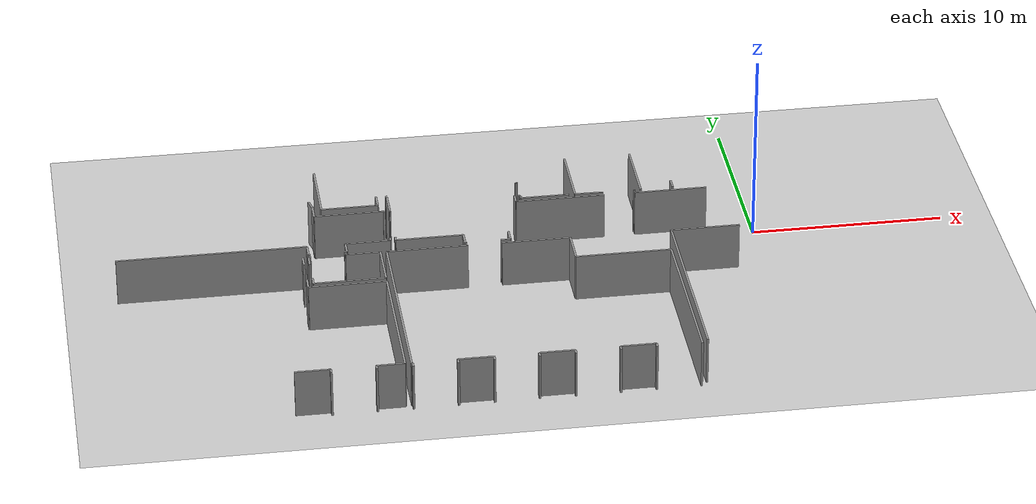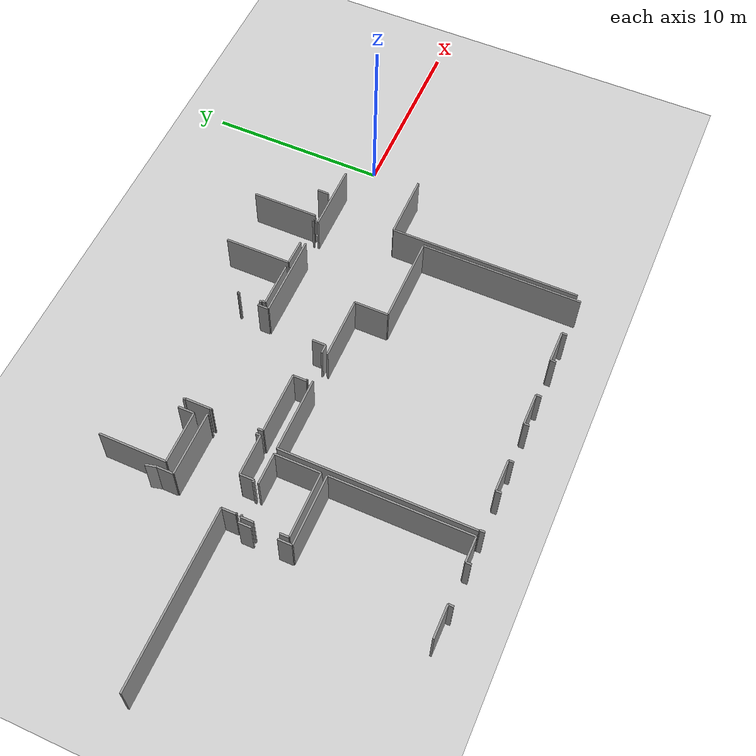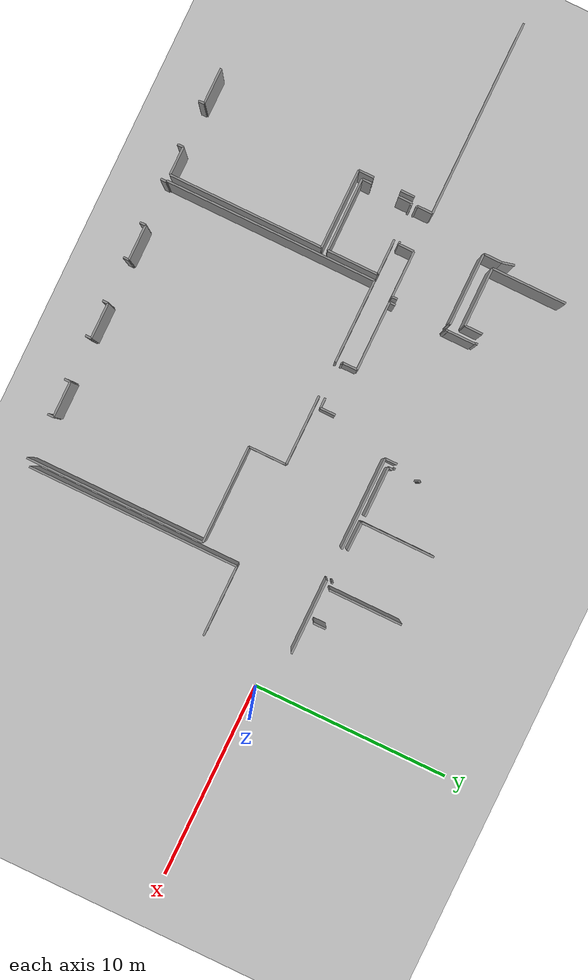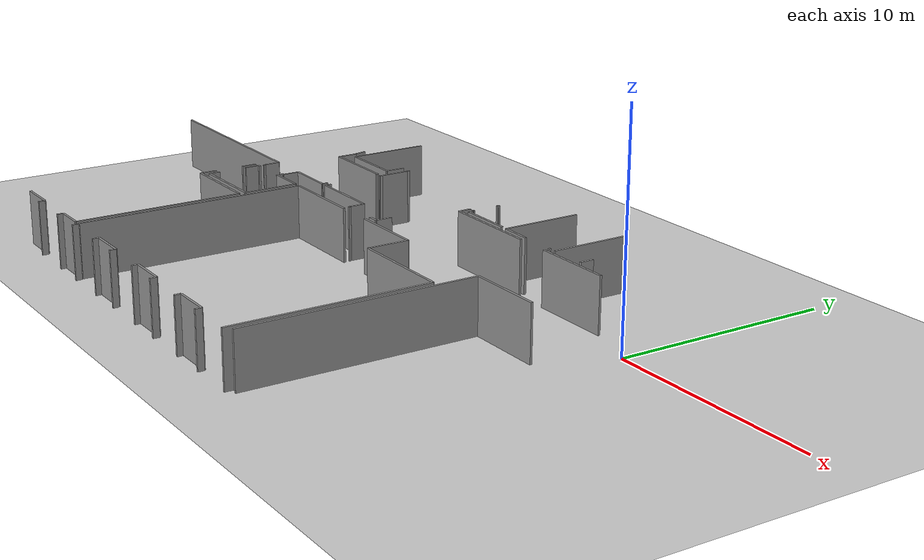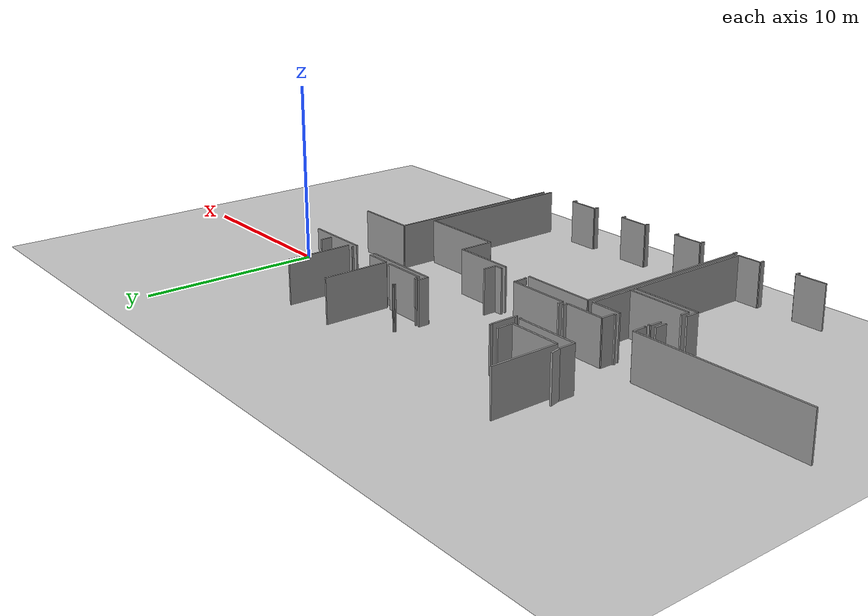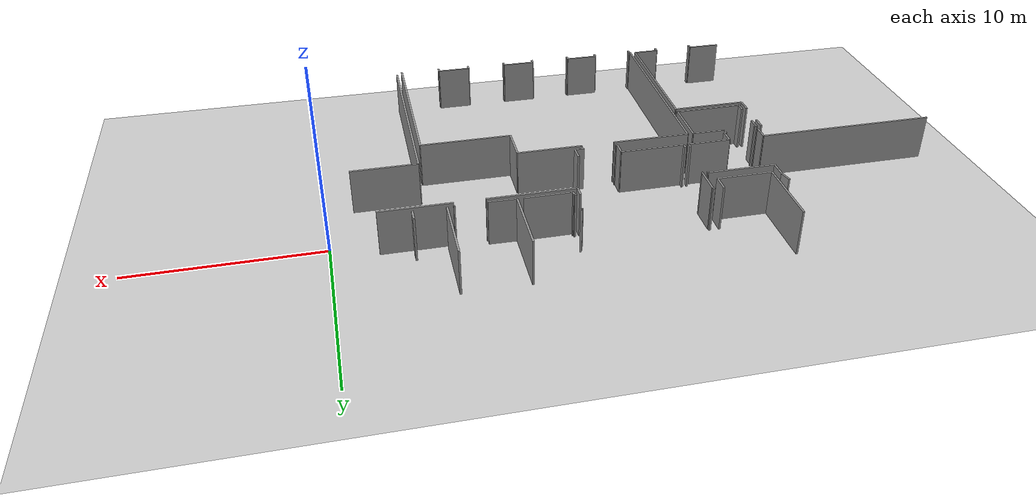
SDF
<sdf version="1.6">
 <world name="default">
  <model name="ground_plane">
   <static>1</static>
   <link name="link">
    <collision name="collision">
     <geometry><plane><normal>0 0 1</normal><size>100 100</size></plane></geometry>
     <surface><friction><ode><mu>100</mu><mu2>50</mu2></ode></friction></surface>
    </collision>
    <visual name="visual">
     <cast_shadows>0</cast_shadows>
     <geometry><plane><normal>0 0 1</normal><size>100 100</size></plane></geometry>
     <material>
      <script><uri>file://media/materials/scripts/gazebo.material</uri><name>Gazebo/Grey</name></script>
     </material>
    </visual>
   </link>
  </model>
  <model name="0510032270_A_40_1_104">
   <static>1</static>
   <link name="Wall_114">
    <collision name="Wall_114_Collision">
     <geometry><box><size>0.701805659682 0.1 2.5</size></box></geometry>
     <pose>0.350902829841 0 1.25 0 0 0</pose>
    </collision>
    <visual name="Wall_114_Visual">
     <pose>0.350902829841 0 1.25 0 0 0</pose>
     <geometry><box><size>0.701805659682 0.1 2.5</size></box></geometry>
     <material>
      <script><uri>file://media/materials/scripts/gazebo.material</uri><name>Gazebo/Grey</name></script>
      <ambient>1 1 1 1</ambient>
     </material>
    </visual>
    <pose>24.0090473589 -18.4666505712 0 0 0 -1.57079632679</pose>
   </link>
   <link name="Wall_115">
    <collision name="Wall_115_Collision">
     <geometry><box><size>0.774616567341 0.1 2.5</size></box></geometry>
     <pose>0.38730828367 0 1.25 0 0 0</pose>
    </collision>
    <visual name="Wall_115_Visual">
     <pose>0.38730828367 0 1.25 0 0 0</pose>
     <geometry><box><size>0.774616567341 0.1 2.5</size></box></geometry>
     <material>
      <script><uri>file://media/materials/scripts/gazebo.material</uri><name>Gazebo/Grey</name></script>
      <ambient>1 1 1 1</ambient>
     </material>
    </visual>
    <pose>24.0090473589 -20.545891203 0 0 0 -1.57079632679</pose>
   </link>
   <link name="Wall_116">
    <collision name="Wall_116_Collision">
     <geometry><box><size>3.94856220695 0.1 2.5</size></box></geometry>
     <pose>1.97428110347 0 1.25 0 0 0</pose>
    </collision>
    <visual name="Wall_116_Visual">
     <pose>1.97428110347 0 1.25 0 0 0</pose>
     <geometry><box><size>3.94856220695 0.1 2.5</size></box></geometry>
     <material>
      <script><uri>file://media/materials/scripts/gazebo.material</uri><name>Gazebo/Grey</name></script>
      <ambient>1 1 1 1</ambient>
     </material>
    </visual>
    <pose>24.0090473589 -21.3205077703 0 0 0 0.0</pose>
   </link>
   <link name="Wall_117">
    <collision name="Wall_117_Collision">
     <geometry><box><size>7.73676251954 0.1 2.5</size></box></geometry>
     <pose>3.86838125977 0 1.25 0 0 0</pose>
    </collision>
    <visual name="Wall_117_Visual">
     <pose>3.86838125977 0 1.25 0 0 0</pose>
     <geometry><box><size>7.73676251954 0.1 2.5</size></box></geometry>
     <material>
      <script><uri>file://media/materials/scripts/gazebo.material</uri><name>Gazebo/Grey</name></script>
      <ambient>1 1 1 1</ambient>
     </material>
    </visual>
    <pose>27.9576095658 -21.3205077703 0 0 0 -1.57079632679</pose>
   </link>
   <link name="Wall_118">
    <collision name="Wall_118_Collision">
     <geometry><box><size>1.40450080689 0.1 2.5</size></box></geometry>
     <pose>0.702250403446 0 1.25 0 0 0</pose>
    </collision>
    <visual name="Wall_118_Visual">
     <pose>0.702250403446 0 1.25 0 0 0</pose>
     <geometry><box><size>1.40450080689 0.1 2.5</size></box></geometry>
     <material>
      <script><uri>file://media/materials/scripts/gazebo.material</uri><name>Gazebo/Grey</name></script>
      <ambient>1 1 1 1</ambient>
     </material>
    </visual>
    <pose>27.9576095658 -29.0572702898 0 0 0 3.14159265359</pose>
   </link>
   <link name="Wall_119">
    <collision name="Wall_119_Collision">
     <geometry><box><size>0.296199346862 0.1 2.5</size></box></geometry>
     <pose>0.148099673431 0 1.25 0 0 0</pose>
    </collision>
    <visual name="Wall_119_Visual">
     <pose>0.148099673431 0 1.25 0 0 0</pose>
     <geometry><box><size>0.296199346862 0.1 2.5</size></box></geometry>
     <material>
      <script><uri>file://media/materials/scripts/gazebo.material</uri><name>Gazebo/Grey</name></script>
      <ambient>1 1 1 1</ambient>
     </material>
    </visual>
    <pose>26.5531087589 -29.0572702898 0 0 0 -1.57079632679</pose>
   </link>
   <link name="Wall_120">
    <collision name="Wall_120_Collision">
     <geometry><box><size>0.292133118162 0.1 2.5</size></box></geometry>
     <pose>0.146066559081 0 1.25 0 0 0</pose>
    </collision>
    <visual name="Wall_120_Visual">
     <pose>0.146066559081 0 1.25 0 0 0</pose>
     <geometry><box><size>0.292133118162 0.1 2.5</size></box></geometry>
     <material>
      <script><uri>file://media/materials/scripts/gazebo.material</uri><name>Gazebo/Grey</name></script>
      <ambient>1 1 1 1</ambient>
     </material>
    </visual>
    <pose>24.3259590582 -29.3534696367 0 0 0 1.57079632679</pose>
   </link>
   <link name="Wall_121">
    <collision name="Wall_121_Collision">
     <geometry><box><size>1.78227886705 0.1 2.5</size></box></geometry>
     <pose>0.891139433524 0 1.25 0 0 0</pose>
    </collision>
    <visual name="Wall_121_Visual">
     <pose>0.891139433524 0 1.25 0 0 0</pose>
     <geometry><box><size>1.78227886705 0.1 2.5</size></box></geometry>
     <material>
      <script><uri>file://media/materials/scripts/gazebo.material</uri><name>Gazebo/Grey</name></script>
      <ambient>1 1 1 1</ambient>
     </material>
    </visual>
    <pose>24.3259590582 -29.0613365185 0 0 0 3.14159265359</pose>
   </link>
   <link name="Wall_125">
    <collision name="Wall_125_Collision">
     <geometry><box><size>0.501289756916 0.1 2.5</size></box></geometry>
     <pose>0.250644878458 0 1.25 0 0 0</pose>
    </collision>
    <visual name="Wall_125_Visual">
     <pose>0.250644878458 0 1.25 0 0 0</pose>
     <geometry><box><size>0.501289756916 0.1 2.5</size></box></geometry>
     <material>
      <script><uri>file://media/materials/scripts/gazebo.material</uri><name>Gazebo/Grey</name></script>
      <ambient>1 1 1 1</ambient>
     </material>
    </visual>
    <pose>24.2996556413 -21.0066457425 0 0 0 1.57079632679</pose>
   </link>
   <link name="Wall_126">
    <collision name="Wall_126_Collision">
     <geometry><box><size>0.688717486054 0.1 2.5</size></box></geometry>
     <pose>0.344358743027 0 1.25 0 0 0</pose>
    </collision>
    <visual name="Wall_126_Visual">
     <pose>0.344358743027 0 1.25 0 0 0</pose>
     <geometry><box><size>0.688717486054 0.1 2.5</size></box></geometry>
     <material>
      <script><uri>file://media/materials/scripts/gazebo.material</uri><name>Gazebo/Grey</name></script>
      <ambient>1 1 1 1</ambient>
     </material>
    </visual>
    <pose>24.2996556413 -19.1426610925 0 0 0 1.57079632679</pose>
   </link>
   <link name="Wall_127">
    <collision name="Wall_127_Collision">
     <geometry><box><size>0.132025363102 0.1 2.5</size></box></geometry>
     <pose>0.0660126815508 0 1.25 0 0 0</pose>
    </collision>
    <visual name="Wall_127_Visual">
     <pose>0.0660126815508 0 1.25 0 0 0</pose>
     <geometry><box><size>0.132025363102 0.1 2.5</size></box></geometry>
     <material>
      <script><uri>file://media/materials/scripts/gazebo.material</uri><name>Gazebo/Grey</name></script>
      <ambient>1 1 1 1</ambient>
     </material>
    </visual>
    <pose>24.2996556413 -18.4539436065 0 0 0 0.0</pose>
   </link>
   <link name="Wall_128">
    <collision name="Wall_128_Collision">
     <geometry><box><size>1.76893655413 0.1 2.5</size></box></geometry>
     <pose>0.884468277063 0 1.25 0 0 0</pose>
    </collision>
    <visual name="Wall_128_Visual">
     <pose>0.884468277063 0 1.25 0 0 0</pose>
     <geometry><box><size>1.76893655413 0.1 2.5</size></box></geometry>
     <material>
      <script><uri>file://media/materials/scripts/gazebo.material</uri><name>Gazebo/Grey</name></script>
      <ambient>1 1 1 1</ambient>
     </material>
    </visual>
    <pose>26.1843526437 -18.4539436065 0 0 0 0.0</pose>
   </link>
   <link name="Wall_129">
    <collision name="Wall_129_Collision">
     <geometry><box><size>2.54482381793 0.1 2.5</size></box></geometry>
     <pose>1.27241190897 0 1.25 0 0 0</pose>
    </collision>
    <visual name="Wall_129_Visual">
     <pose>1.27241190897 0 1.25 0 0 0</pose>
     <geometry><box><size>2.54482381793 0.1 2.5</size></box></geometry>
     <material>
      <script><uri>file://media/materials/scripts/gazebo.material</uri><name>Gazebo/Grey</name></script>
      <ambient>1 1 1 1</ambient>
     </material>
    </visual>
    <pose>27.9532891978 -18.4539436065 0 0 0 -1.57079632679</pose>
   </link>
   <link name="Wall_130">
    <collision name="Wall_130_Collision">
     <geometry><box><size>3.65364205054 0.1 2.5</size></box></geometry>
     <pose>1.82682102527 0 1.25 0 0 0</pose>
    </collision>
    <visual name="Wall_130_Visual">
     <pose>1.82682102527 0 1.25 0 0 0</pose>
     <geometry><box><size>3.65364205054 0.1 2.5</size></box></geometry>
     <material>
      <script><uri>file://media/materials/scripts/gazebo.material</uri><name>Gazebo/Grey</name></script>
      <ambient>1 1 1 1</ambient>
     </material>
    </visual>
    <pose>27.9532891978 -20.9987674244 0 0 0 -3.1394363602</pose>
   </link>
   <link name="Wall_150">
    <collision name="Wall_150_Collision">
     <geometry><box><size>0.601906974055 0.1 2.5</size></box></geometry>
     <pose>0.300953487027 0 1.25 0 0 0</pose>
    </collision>
    <visual name="Wall_150_Visual">
     <pose>0.300953487027 0 1.25 0 0 0</pose>
     <geometry><box><size>0.601906974055 0.1 2.5</size></box></geometry>
     <material>
      <script><uri>file://media/materials/scripts/gazebo.material</uri><name>Gazebo/Grey</name></script>
      <ambient>1 1 1 1</ambient>
     </material>
    </visual>
    <pose>24.8433866602 -12.9530985933 0 0 0 -1.33252519236</pose>
   </link>
   <link name="Wall_151">
    <collision name="Wall_151_Collision">
     <geometry><box><size>0.910581089495 0.1 2.5</size></box></geometry>
     <pose>0.455290544748 0 1.25 0 0 0</pose>
    </collision>
    <visual name="Wall_151_Visual">
     <pose>0.455290544748 0 1.25 0 0 0</pose>
     <geometry><box><size>0.910581089495 0.1 2.5</size></box></geometry>
     <material>
      <script><uri>file://media/materials/scripts/gazebo.material</uri><name>Gazebo/Grey</name></script>
      <ambient>1 1 1 1</ambient>
     </material>
    </visual>
    <pose>24.9854505254 -13.5380001779 0 0 0 -1.57079632679</pose>
   </link>
   <link name="Wall_152">
    <collision name="Wall_152_Collision">
     <geometry><box><size>3.60509295145 0.1 2.5</size></box></geometry>
     <pose>1.80254647572 0 1.25 0 0 0</pose>
    </collision>
    <visual name="Wall_152_Visual">
     <pose>1.80254647572 0 1.25 0 0 0</pose>
     <geometry><box><size>3.60509295145 0.1 2.5</size></box></geometry>
     <material>
      <script><uri>file://media/materials/scripts/gazebo.material</uri><name>Gazebo/Grey</name></script>
      <ambient>1 1 1 1</ambient>
     </material>
    </visual>
    <pose>24.9854505254 -14.4485812674 0 0 0 0.0</pose>
   </link>
   <link name="Wall_153">
    <collision name="Wall_153_Collision">
     <geometry><box><size>0.0983519066801 0.1 2.5</size></box></geometry>
     <pose>0.04917595334 0 1.25 0 0 0</pose>
    </collision>
    <visual name="Wall_153_Visual">
     <pose>0.04917595334 0 1.25 0 0 0</pose>
     <geometry><box><size>0.0983519066801 0.1 2.5</size></box></geometry>
     <material>
      <script><uri>file://media/materials/scripts/gazebo.material</uri><name>Gazebo/Grey</name></script>
      <ambient>1 1 1 1</ambient>
     </material>
    </visual>
    <pose>28.5905434769 -14.4485812674 0 0 0 -1.57079632679</pose>
   </link>
   <link name="Wall_154">
    <collision name="Wall_154_Collision">
     <geometry><box><size>0.265321422672 0.1 2.5</size></box></geometry>
     <pose>0.132660711336 0 1.25 0 0 0</pose>
    </collision>
    <visual name="Wall_154_Visual">
     <pose>0.132660711336 0 1.25 0 0 0</pose>
     <geometry><box><size>0.265321422672 0.1 2.5</size></box></geometry>
     <material>
      <script><uri>file://media/materials/scripts/gazebo.material</uri><name>Gazebo/Grey</name></script>
      <ambient>1 1 1 1</ambient>
     </material>
    </visual>
    <pose>28.5905434769 -17.1335629058 0 0 0 -1.57079632679</pose>
   </link>
   <link name="Wall_155">
    <collision name="Wall_155_Collision">
     <geometry><box><size>2.30783892652 0.1 2.5</size></box></geometry>
     <pose>1.15391946326 0 1.25 0 0 0</pose>
    </collision>
    <visual name="Wall_155_Visual">
     <pose>1.15391946326 0 1.25 0 0 0</pose>
     <geometry><box><size>2.30783892652 0.1 2.5</size></box></geometry>
     <material>
      <script><uri>file://media/materials/scripts/gazebo.material</uri><name>Gazebo/Grey</name></script>
      <ambient>1 1 1 1</ambient>
     </material>
    </visual>
    <pose>28.5905434769 -17.3988843285 0 0 0 3.14159265359</pose>
   </link>
   <link name="Wall_156">
    <collision name="Wall_156_Collision">
     <geometry><box><size>0.783384372975 0.1 2.5</size></box></geometry>
     <pose>0.391692186487 0 1.25 0 0 0</pose>
    </collision>
    <visual name="Wall_156_Visual">
     <pose>0.391692186487 0 1.25 0 0 0</pose>
     <geometry><box><size>0.783384372975 0.1 2.5</size></box></geometry>
     <material>
      <script><uri>file://media/materials/scripts/gazebo.material</uri><name>Gazebo/Grey</name></script>
      <ambient>1 1 1 1</ambient>
     </material>
    </visual>
    <pose>26.2827045504 -17.3988843285 0 0 0 -1.57079632679</pose>
   </link>
   <link name="Wall_157">
    <collision name="Wall_157_Collision">
     <geometry><box><size>0.13901419368 0.1 2.5</size></box></geometry>
     <pose>0.0695070968398 0 1.25 0 0 0</pose>
    </collision>
    <visual name="Wall_157_Visual">
     <pose>0.0695070968398 0 1.25 0 0 0</pose>
     <geometry><box><size>0.13901419368 0.1 2.5</size></box></geometry>
     <material>
      <script><uri>file://media/materials/scripts/gazebo.material</uri><name>Gazebo/Grey</name></script>
      <ambient>1 1 1 1</ambient>
     </material>
    </visual>
    <pose>26.2827045504 -18.1822687015 0 0 0 3.14159265359</pose>
   </link>
   <link name="Wall_158">
    <collision name="Wall_158_Collision">
     <geometry><box><size>0.0872968474021 0.1 2.5</size></box></geometry>
     <pose>0.043648423701 0 1.25 0 0 0</pose>
    </collision>
    <visual name="Wall_158_Visual">
     <pose>0.043648423701 0 1.25 0 0 0</pose>
     <geometry><box><size>0.0872968474021 0.1 2.5</size></box></geometry>
     <material>
      <script><uri>file://media/materials/scripts/gazebo.material</uri><name>Gazebo/Grey</name></script>
      <ambient>1 1 1 1</ambient>
     </material>
    </visual>
    <pose>24.4180845521 -18.1822687015 0 0 0 3.14159265359</pose>
   </link>
   <link name="Wall_159">
    <collision name="Wall_159_Collision">
     <geometry><box><size>0.784909208737 0.1 2.5</size></box></geometry>
     <pose>0.392454604369 0 1.25 0 0 0</pose>
    </collision>
    <visual name="Wall_159_Visual">
     <pose>0.392454604369 0 1.25 0 0 0</pose>
     <geometry><box><size>0.784909208737 0.1 2.5</size></box></geometry>
     <material>
      <script><uri>file://media/materials/scripts/gazebo.material</uri><name>Gazebo/Grey</name></script>
      <ambient>1 1 1 1</ambient>
     </material>
    </visual>
    <pose>24.3307877047 -18.1822687015 0 0 0 1.57079632679</pose>
   </link>
   <link name="Wall_160">
    <collision name="Wall_160_Collision">
     <geometry><box><size>9.70481721031 0.1 2.5</size></box></geometry>
     <pose>4.85240860516 0 1.25 0 0 0</pose>
    </collision>
    <visual name="Wall_160_Visual">
     <pose>4.85240860516 0 1.25 0 0 0</pose>
     <geometry><box><size>9.70481721031 0.1 2.5</size></box></geometry>
     <material>
      <script><uri>file://media/materials/scripts/gazebo.material</uri><name>Gazebo/Grey</name></script>
      <ambient>1 1 1 1</ambient>
     </material>
    </visual>
    <pose>24.3307877047 -17.3973594927 0 0 0 3.14159265359</pose>
   </link>
   <link name="Wall_216">
    <collision name="Wall_216_Collision">
     <geometry><box><size>2.50022237188 0.1 2.5</size></box></geometry>
     <pose>1.25011118594 0 1.25 0 0 0</pose>
    </collision>
    <visual name="Wall_216_Visual">
     <pose>1.25011118594 0 1.25 0 0 0</pose>
     <geometry><box><size>2.50022237188 0.1 2.5</size></box></geometry>
     <material>
      <script><uri>file://media/materials/scripts/gazebo.material</uri><name>Gazebo/Grey</name></script>
      <ambient>1 1 1 1</ambient>
     </material>
    </visual>
    <pose>38.2609248129 -14.1437411845 0 0 0 3.14159265359</pose>
   </link>
   <link name="Wall_217">
    <collision name="Wall_217_Collision">
     <geometry><box><size>0.203946783232 0.1 2.5</size></box></geometry>
     <pose>0.101973391616 0 1.25 0 0 0</pose>
    </collision>
    <visual name="Wall_217_Visual">
     <pose>0.101973391616 0 1.25 0 0 0</pose>
     <geometry><box><size>0.203946783232 0.1 2.5</size></box></geometry>
     <material>
      <script><uri>file://media/materials/scripts/gazebo.material</uri><name>Gazebo/Grey</name></script>
      <ambient>1 1 1 1</ambient>
     </material>
    </visual>
    <pose>35.760702441 -14.1437411845 0 0 0 1.57079632679</pose>
   </link>
   <link name="Wall_218">
    <collision name="Wall_218_Collision">
     <geometry><box><size>0.0601039429711 0.1 2.5</size></box></geometry>
     <pose>0.0300519714856 0 1.25 0 0 0</pose>
    </collision>
    <visual name="Wall_218_Visual">
     <pose>0.0300519714856 0 1.25 0 0 0</pose>
     <geometry><box><size>0.0601039429711 0.1 2.5</size></box></geometry>
     <material>
      <script><uri>file://media/materials/scripts/gazebo.material</uri><name>Gazebo/Grey</name></script>
      <ambient>1 1 1 1</ambient>
     </material>
    </visual>
    <pose>35.760702441 -13.9397944013 0 0 0 3.14159265359</pose>
   </link>
   <link name="Wall_219">
    <collision name="Wall_219_Collision">
     <geometry><box><size>0.111948358896 0.1 2.5</size></box></geometry>
     <pose>0.0559741794478 0 1.25 0 0 0</pose>
    </collision>
    <visual name="Wall_219_Visual">
     <pose>0.0559741794478 0 1.25 0 0 0</pose>
     <geometry><box><size>0.111948358896 0.1 2.5</size></box></geometry>
     <material>
      <script><uri>file://media/materials/scripts/gazebo.material</uri><name>Gazebo/Grey</name></script>
      <ambient>1 1 1 1</ambient>
     </material>
    </visual>
    <pose>35.700598498 -13.9397944013 0 0 0 1.57079632679</pose>
   </link>
   <link name="Wall_220">
    <collision name="Wall_220_Collision">
     <geometry><box><size>0.0825952704677 0.1 2.5</size></box></geometry>
     <pose>0.0412976352339 0 1.25 0 0 0</pose>
    </collision>
    <visual name="Wall_220_Visual">
     <pose>0.0412976352339 0 1.25 0 0 0</pose>
     <geometry><box><size>0.0825952704677 0.1 2.5</size></box></geometry>
     <material>
      <script><uri>file://media/materials/scripts/gazebo.material</uri><name>Gazebo/Grey</name></script>
      <ambient>1 1 1 1</ambient>
     </material>
    </visual>
    <pose>35.700598498 -12.6458441872 0 0 0 1.57079632679</pose>
   </link>
   <link name="Wall_221">
    <collision name="Wall_221_Collision">
     <geometry><box><size>0.0402810780589 0.1 2.5</size></box></geometry>
     <pose>0.0201405390294 0 1.25 0 0 0</pose>
    </collision>
    <visual name="Wall_221_Visual">
     <pose>0.0201405390294 0 1.25 0 0 0</pose>
     <geometry><box><size>0.0402810780589 0.1 2.5</size></box></geometry>
     <material>
      <script><uri>file://media/materials/scripts/gazebo.material</uri><name>Gazebo/Grey</name></script>
      <ambient>1 1 1 1</ambient>
     </material>
    </visual>
    <pose>35.700598498 -12.5632489167 0 0 0 0.0</pose>
   </link>
   <link name="Wall_222">
    <collision name="Wall_222_Collision">
     <geometry><box><size>0.0627806362481 0.1 2.5</size></box></geometry>
     <pose>0.031390318124 0 1.25 0 0 0</pose>
    </collision>
    <visual name="Wall_222_Visual">
     <pose>0.031390318124 0 1.25 0 0 0</pose>
     <geometry><box><size>0.0627806362481 0.1 2.5</size></box></geometry>
     <material>
      <script><uri>file://media/materials/scripts/gazebo.material</uri><name>Gazebo/Grey</name></script>
      <ambient>1 1 1 1</ambient>
     </material>
    </visual>
    <pose>35.7408795761 -12.5632489167 0 0 0 1.27080930107</pose>
   </link>
   <link name="Wall_223">
    <collision name="Wall_223_Collision">
     <geometry><box><size>3.69162738097 0.1 2.5</size></box></geometry>
     <pose>1.84581369048 0 1.25 0 0 0</pose>
    </collision>
    <visual name="Wall_223_Visual">
     <pose>1.84581369048 0 1.25 0 0 0</pose>
     <geometry><box><size>3.69162738097 0.1 2.5</size></box></geometry>
     <material>
      <script><uri>file://media/materials/scripts/gazebo.material</uri><name>Gazebo/Grey</name></script>
      <ambient>1 1 1 1</ambient>
     </material>
    </visual>
    <pose>38.5723725174 -14.1513653634 0 0 0 1.57079632679</pose>
   </link>
   <link name="Wall_228">
    <collision name="Wall_228_Collision">
     <geometry><box><size>0.0797997382365 0.1 2.5</size></box></geometry>
     <pose>0.0398998691183 0 1.25 0 0 0</pose>
    </collision>
    <visual name="Wall_228_Visual">
     <pose>0.0398998691183 0 1.25 0 0 0</pose>
     <geometry><box><size>0.0797997382365 0.1 2.5</size></box></geometry>
     <material>
      <script><uri>file://media/materials/scripts/gazebo.material</uri><name>Gazebo/Grey</name></script>
      <ambient>1 1 1 1</ambient>
     </material>
    </visual>
    <pose>41.7092138201 -14.1771605017 0 0 0 3.14159265359</pose>
   </link>
   <link name="Wall_229">
    <collision name="Wall_229_Collision">
     <geometry><box><size>1.46152859145 0.1 2.5</size></box></geometry>
     <pose>0.730764295723 0 1.25 0 0 0</pose>
    </collision>
    <visual name="Wall_229_Visual">
     <pose>0.730764295723 0 1.25 0 0 0</pose>
     <geometry><box><size>1.46152859145 0.1 2.5</size></box></geometry>
     <material>
      <script><uri>file://media/materials/scripts/gazebo.material</uri><name>Gazebo/Grey</name></script>
      <ambient>1 1 1 1</ambient>
     </material>
    </visual>
    <pose>40.0336734564 -14.1771605017 0 0 0 3.1239423128</pose>
   </link>
   <link name="Wall_230">
    <collision name="Wall_230_Collision">
     <geometry><box><size>3.69798086331 0.1 2.5</size></box></geometry>
     <pose>1.84899043166 0 1.25 0 0 0</pose>
    </collision>
    <visual name="Wall_230_Visual">
     <pose>1.84899043166 0 1.25 0 0 0</pose>
     <geometry><box><size>3.69798086331 0.1 2.5</size></box></geometry>
     <material>
      <script><uri>file://media/materials/scripts/gazebo.material</uri><name>Gazebo/Grey</name></script>
      <ambient>1 1 1 1</ambient>
     </material>
    </visual>
    <pose>42.0224404996 -14.1587354029 0 0 0 1.57079632679</pose>
   </link>
   <link name="Wall_233">
    <collision name="Wall_233_Collision">
     <geometry><box><size>0.63115493602 0.1 2.5</size></box></geometry>
     <pose>0.31557746801 0 1.25 0 0 0</pose>
    </collision>
    <visual name="Wall_233_Visual">
     <pose>0.31557746801 0 1.25 0 0 0</pose>
     <geometry><box><size>0.63115493602 0.1 2.5</size></box></geometry>
     <material>
      <script><uri>file://media/materials/scripts/gazebo.material</uri><name>Gazebo/Grey</name></script>
      <ambient>1 1 1 1</ambient>
     </material>
    </visual>
    <pose>43.7073840172 -13.5275804669 0 0 0 -1.57079632679</pose>
   </link>
   <link name="Wall_244">
    <collision name="Wall_244_Collision">
     <geometry><box><size>10.6087906782 0.1 2.5</size></box></geometry>
     <pose>5.30439533909 0 1.25 0 0 0</pose>
    </collision>
    <visual name="Wall_244_Visual">
     <pose>5.30439533909 0 1.25 0 0 0</pose>
     <geometry><box><size>10.6087906782 0.1 2.5</size></box></geometry>
     <material>
      <script><uri>file://media/materials/scripts/gazebo.material</uri><name>Gazebo/Grey</name></script>
      <ambient>1 1 1 1</ambient>
     </material>
    </visual>
    <pose>28.2728693597 -29.0671817223 0 0 0 1.57079632679</pose>
   </link>
   <link name="Wall_245">
    <collision name="Wall_245_Collision">
     <geometry><box><size>4.1577188457 0.1 2.5</size></box></geometry>
     <pose>2.07885942285 0 1.25 0 0 0</pose>
    </collision>
    <visual name="Wall_245_Visual">
     <pose>2.07885942285 0 1.25 0 0 0</pose>
     <geometry><box><size>4.1577188457 0.1 2.5</size></box></geometry>
     <material>
      <script><uri>file://media/materials/scripts/gazebo.material</uri><name>Gazebo/Grey</name></script>
      <ambient>1 1 1 1</ambient>
     </material>
    </visual>
    <pose>28.2728693597 -18.4583910441 0 0 0 0.0</pose>
   </link>
   <link name="Wall_246">
    <collision name="Wall_246_Collision">
     <geometry><box><size>3.51106141276 0.1 2.5</size></box></geometry>
     <pose>1.75553070638 0 1.25 0 0 0</pose>
    </collision>
    <visual name="Wall_246_Visual">
     <pose>1.75553070638 0 1.25 0 0 0</pose>
     <geometry><box><size>3.51106141276 0.1 2.5</size></box></geometry>
     <material>
      <script><uri>file://media/materials/scripts/gazebo.material</uri><name>Gazebo/Grey</name></script>
      <ambient>1 1 1 1</ambient>
     </material>
    </visual>
    <pose>34.1677573478 -18.4583910441 0 0 0 0.0</pose>
   </link>
   <link name="Wall_247">
    <collision name="Wall_247_Collision">
     <geometry><box><size>1.90070777793 0.1 2.5</size></box></geometry>
     <pose>0.950353888967 0 1.25 0 0 0</pose>
    </collision>
    <visual name="Wall_247_Visual">
     <pose>0.950353888967 0 1.25 0 0 0</pose>
     <geometry><box><size>1.90070777793 0.1 2.5</size></box></geometry>
     <material>
      <script><uri>file://media/materials/scripts/gazebo.material</uri><name>Gazebo/Grey</name></script>
      <ambient>1 1 1 1</ambient>
     </material>
    </visual>
    <pose>37.6788187606 -18.4583910441 0 0 0 -1.57079632679</pose>
   </link>
   <link name="Wall_248">
    <collision name="Wall_248_Collision">
     <geometry><box><size>4.89167312604 0.1 2.5</size></box></geometry>
     <pose>2.44583656302 0 1.25 0 0 0</pose>
    </collision>
    <visual name="Wall_248_Visual">
     <pose>2.44583656302 0 1.25 0 0 0</pose>
     <geometry><box><size>4.89167312604 0.1 2.5</size></box></geometry>
     <material>
      <script><uri>file://media/materials/scripts/gazebo.material</uri><name>Gazebo/Grey</name></script>
      <ambient>1 1 1 1</ambient>
     </material>
    </visual>
    <pose>37.6788187606 -20.3590988221 0 0 0 0.0</pose>
   </link>
   <link name="Wall_249">
    <collision name="Wall_249_Collision">
     <geometry><box><size>8.99132114312 0.1 2.5</size></box></geometry>
     <pose>4.49566057156 0 1.25 0 0 0</pose>
    </collision>
    <visual name="Wall_249_Visual">
     <pose>4.49566057156 0 1.25 0 0 0</pose>
     <geometry><box><size>8.99132114312 0.1 2.5</size></box></geometry>
     <material>
      <script><uri>file://media/materials/scripts/gazebo.material</uri><name>Gazebo/Grey</name></script>
      <ambient>1 1 1 1</ambient>
     </material>
    </visual>
    <pose>42.5704918866 -20.3590988221 0 0 0 -1.57079632679</pose>
   </link>
   <link name="Wall_250">
    <collision name="Wall_250_Collision">
     <geometry><box><size>0.289591725225 0.1 2.5</size></box></geometry>
     <pose>0.144795862612 0 1.25 0 0 0</pose>
    </collision>
    <visual name="Wall_250_Visual">
     <pose>0.144795862612 0 1.25 0 0 0</pose>
     <geometry><box><size>0.289591725225 0.1 2.5</size></box></geometry>
     <material>
      <script><uri>file://media/materials/scripts/gazebo.material</uri><name>Gazebo/Grey</name></script>
      <ambient>1 1 1 1</ambient>
     </material>
    </visual>
    <pose>40.3369887035 -29.3504199652 0 0 0 1.57079632679</pose>
   </link>
   <link name="Wall_251">
    <collision name="Wall_251_Collision">
     <geometry><box><size>1.78723458328 0.1 2.5</size></box></geometry>
     <pose>0.893617291638 0 1.25 0 0 0</pose>
    </collision>
    <visual name="Wall_251_Visual">
     <pose>0.893617291638 0 1.25 0 0 0</pose>
     <geometry><box><size>1.78723458328 0.1 2.5</size></box></geometry>
     <material>
      <script><uri>file://media/materials/scripts/gazebo.material</uri><name>Gazebo/Grey</name></script>
      <ambient>1 1 1 1</ambient>
     </material>
    </visual>
    <pose>40.3369887035 -29.06082824 0 0 0 3.14159265359</pose>
   </link>
   <link name="Wall_252">
    <collision name="Wall_252_Collision">
     <geometry><box><size>0.301282132737 0.1 2.5</size></box></geometry>
     <pose>0.150641066368 0 1.25 0 0 0</pose>
    </collision>
    <visual name="Wall_252_Visual">
     <pose>0.150641066368 0 1.25 0 0 0</pose>
     <geometry><box><size>0.301282132737 0.1 2.5</size></box></geometry>
     <material>
      <script><uri>file://media/materials/scripts/gazebo.material</uri><name>Gazebo/Grey</name></script>
      <ambient>1 1 1 1</ambient>
     </material>
    </visual>
    <pose>38.5497541202 -29.06082824 0 0 0 -1.57079632679</pose>
   </link>
   <link name="Wall_253">
    <collision name="Wall_253_Collision">
     <geometry><box><size>0.297597112978 0.1 2.5</size></box></geometry>
     <pose>0.148798556489 0 1.25 0 0 0</pose>
    </collision>
    <visual name="Wall_253_Visual">
     <pose>0.148798556489 0 1.25 0 0 0</pose>
     <geometry><box><size>0.297597112978 0.1 2.5</size></box></geometry>
     <material>
      <script><uri>file://media/materials/scripts/gazebo.material</uri><name>Gazebo/Grey</name></script>
      <ambient>1 1 1 1</ambient>
     </material>
    </visual>
    <pose>36.323875116 -29.3621103727 0 0 0 1.57079632679</pose>
   </link>
   <link name="Wall_254">
    <collision name="Wall_254_Collision">
     <geometry><box><size>1.78570974751 0.1 2.5</size></box></geometry>
     <pose>0.892854873756 0 1.25 0 0 0</pose>
    </collision>
    <visual name="Wall_254_Visual">
     <pose>0.892854873756 0 1.25 0 0 0</pose>
     <geometry><box><size>1.78570974751 0.1 2.5</size></box></geometry>
     <material>
      <script><uri>file://media/materials/scripts/gazebo.material</uri><name>Gazebo/Grey</name></script>
      <ambient>1 1 1 1</ambient>
     </material>
    </visual>
    <pose>36.323875116 -29.0645132597 0 0 0 3.14159265359</pose>
   </link>
   <link name="Wall_255">
    <collision name="Wall_255_Collision">
     <geometry><box><size>0.285906705465 0.1 2.5</size></box></geometry>
     <pose>0.142953352733 0 1.25 0 0 0</pose>
    </collision>
    <visual name="Wall_255_Visual">
     <pose>0.142953352733 0 1.25 0 0 0</pose>
     <geometry><box><size>0.285906705465 0.1 2.5</size></box></geometry>
     <material>
      <script><uri>file://media/materials/scripts/gazebo.material</uri><name>Gazebo/Grey</name></script>
      <ambient>1 1 1 1</ambient>
     </material>
    </visual>
    <pose>34.5381653684 -29.0645132597 0 0 0 -1.57079632679</pose>
   </link>
   <link name="Wall_256">
    <collision name="Wall_256_Collision">
     <geometry><box><size>0.28489014829 0.1 2.5</size></box></geometry>
     <pose>0.142445074145 0 1.25 0 0 0</pose>
    </collision>
    <visual name="Wall_256_Visual">
     <pose>0.142445074145 0 1.25 0 0 0</pose>
     <geometry><box><size>0.28489014829 0.1 2.5</size></box></geometry>
     <material>
      <script><uri>file://media/materials/scripts/gazebo.material</uri><name>Gazebo/Grey</name></script>
      <ambient>1 1 1 1</ambient>
     </material>
    </visual>
    <pose>32.3164796625 -29.3504199652 0 0 0 1.57079632679</pose>
   </link>
   <link name="Wall_257">
    <collision name="Wall_257_Collision">
     <geometry><box><size>1.77567124541 0.1 2.5</size></box></geometry>
     <pose>0.887835622705 0 1.25 0 0 0</pose>
    </collision>
    <visual name="Wall_257_Visual">
     <pose>0.887835622705 0 1.25 0 0 0</pose>
     <geometry><box><size>1.77567124541 0.1 2.5</size></box></geometry>
     <material>
      <script><uri>file://media/materials/scripts/gazebo.material</uri><name>Gazebo/Grey</name></script>
      <ambient>1 1 1 1</ambient>
     </material>
    </visual>
    <pose>32.3164796625 -29.0655298169 0 0 0 3.14159265359</pose>
   </link>
   <link name="Wall_258">
    <collision name="Wall_258_Collision">
     <geometry><box><size>0.297597112978 0.1 2.5</size></box></geometry>
     <pose>0.148798556489 0 1.25 0 0 0</pose>
    </collision>
    <visual name="Wall_258_Visual">
     <pose>0.148798556489 0 1.25 0 0 0</pose>
     <geometry><box><size>0.297597112978 0.1 2.5</size></box></geometry>
     <material>
      <script><uri>file://media/materials/scripts/gazebo.material</uri><name>Gazebo/Grey</name></script>
      <ambient>1 1 1 1</ambient>
     </material>
    </visual>
    <pose>30.5408084171 -29.0655298169 0 0 0 -1.57079632679</pose>
   </link>
   <link name="Wall_259">
    <collision name="Wall_259_Collision">
     <geometry><box><size>0.275741133715 0.1 2.5</size></box></geometry>
     <pose>0.137870566858 0 1.25 0 0 0</pose>
    </collision>
    <visual name="Wall_259_Visual">
     <pose>0.137870566858 0 1.25 0 0 0</pose>
     <geometry><box><size>0.275741133715 0.1 2.5</size></box></geometry>
     <material>
      <script><uri>file://media/materials/scripts/gazebo.material</uri><name>Gazebo/Grey</name></script>
      <ambient>1 1 1 1</ambient>
     </material>
    </visual>
    <pose>28.3206475469 -29.3631269299 0 0 0 1.57079632679</pose>
   </link>
   <link name="Wall_260">
    <collision name="Wall_260_Collision">
     <geometry><box><size>0.0518744616811 0.1 2.5</size></box></geometry>
     <pose>0.0259372308406 0 1.25 0 0 0</pose>
    </collision>
    <visual name="Wall_260_Visual">
     <pose>0.0259372308406 0 1.25 0 0 0</pose>
     <geometry><box><size>0.0518744616811 0.1 2.5</size></box></geometry>
     <material>
      <script><uri>file://media/materials/scripts/gazebo.material</uri><name>Gazebo/Grey</name></script>
      <ambient>1 1 1 1</ambient>
     </material>
    </visual>
    <pose>28.3206475469 -29.0873857962 0 0 0 2.74152553235</pose>
   </link>
   <link name="Wall_261">
    <collision name="Wall_261_Collision">
     <geometry><box><size>10.5927799027 0.1 2.5</size></box></geometry>
     <pose>5.29638995133 0 1.25 0 0 0</pose>
    </collision>
    <visual name="Wall_261_Visual">
     <pose>5.29638995133 0 1.25 0 0 0</pose>
     <geometry><box><size>10.5927799027 0.1 2.5</size></box></geometry>
     <material>
      <script><uri>file://media/materials/scripts/gazebo.material</uri><name>Gazebo/Grey</name></script>
      <ambient>1 1 1 1</ambient>
     </material>
    </visual>
    <pose>42.8863870287 -29.062988424 0 0 0 1.57079632679</pose>
   </link>
   <link name="Wall_262">
    <collision name="Wall_262_Collision">
     <geometry><box><size>3.54333710307 0.1 2.5</size></box></geometry>
     <pose>1.77166855153 0 1.25 0 0 0</pose>
    </collision>
    <visual name="Wall_262_Visual">
     <pose>1.77166855153 0 1.25 0 0 0</pose>
     <geometry><box><size>3.54333710307 0.1 2.5</size></box></geometry>
     <material>
      <script><uri>file://media/materials/scripts/gazebo.material</uri><name>Gazebo/Grey</name></script>
      <ambient>1 1 1 1</ambient>
     </material>
    </visual>
    <pose>42.8863870287 -18.4702085213 0 0 0 0.0</pose>
   </link>
   <link name="Wall_500">
    <collision name="Wall_500_Collision">
     <geometry><box><size>1.36307610201 0.1 2.5</size></box></geometry>
     <pose>0.681538051006 0 1.25 0 0 0</pose>
    </collision>
    <visual name="Wall_500_Visual">
     <pose>0.681538051006 0 1.25 0 0 0</pose>
     <geometry><box><size>1.36307610201 0.1 2.5</size></box></geometry>
     <material>
      <script><uri>file://media/materials/scripts/gazebo.material</uri><name>Gazebo/Grey</name></script>
      <ambient>1 1 1 1</ambient>
     </material>
    </visual>
    <pose>28.8985603009 -14.4024549856 0 0 0 1.57079632679</pose>
   </link>
   <link name="Wall_501">
    <collision name="Wall_501_Collision">
     <geometry><box><size>0.0330381081871 0.1 2.5</size></box></geometry>
     <pose>0.0165190540935 0 1.25 0 0 0</pose>
    </collision>
    <visual name="Wall_501_Visual">
     <pose>0.0165190540935 0 1.25 0 0 0</pose>
     <geometry><box><size>0.0330381081871 0.1 2.5</size></box></geometry>
     <material>
      <script><uri>file://media/materials/scripts/gazebo.material</uri><name>Gazebo/Grey</name></script>
      <ambient>1 1 1 1</ambient>
     </material>
    </visual>
    <pose>28.8985603009 -13.0393788836 0 0 0 3.14159265359</pose>
   </link>
   <link name="Wall_502">
    <collision name="Wall_502_Collision">
     <geometry><box><size>0.131898293455 0.1 2.5</size></box></geometry>
     <pose>0.0659491467273 0 1.25 0 0 0</pose>
    </collision>
    <visual name="Wall_502_Visual">
     <pose>0.0659491467273 0 1.25 0 0 0</pose>
     <geometry><box><size>0.131898293455 0.1 2.5</size></box></geometry>
     <material>
      <script><uri>file://media/materials/scripts/gazebo.material</uri><name>Gazebo/Grey</name></script>
      <ambient>1 1 1 1</ambient>
     </material>
    </visual>
    <pose>28.8655221927 -13.0393788836 0 0 0 1.57079632679</pose>
   </link>
   <link name="Wall_513">
    <collision name="Wall_513_Collision">
     <geometry><box><size>0.604216170883 0.1 2.5</size></box></geometry>
     <pose>0.302108085442 0 1.25 0 0 0</pose>
    </collision>
    <visual name="Wall_513_Visual">
     <pose>0.302108085442 0 1.25 0 0 0</pose>
     <geometry><box><size>0.604216170883 0.1 2.5</size></box></geometry>
     <material>
      <script><uri>file://media/materials/scripts/gazebo.material</uri><name>Gazebo/Grey</name></script>
      <ambient>1 1 1 1</ambient>
     </material>
    </visual>
    <pose>35.4528126866 -13.8547848076 0 0 0 -1.57079632679</pose>
   </link>
   <link name="Wall_514">
    <collision name="Wall_514_Collision">
     <geometry><box><size>4.62126891749 0.1 2.5</size></box></geometry>
     <pose>2.31063445875 0 1.25 0 0 0</pose>
    </collision>
    <visual name="Wall_514_Visual">
     <pose>2.31063445875 0 1.25 0 0 0</pose>
     <geometry><box><size>4.62126891749 0.1 2.5</size></box></geometry>
     <material>
      <script><uri>file://media/materials/scripts/gazebo.material</uri><name>Gazebo/Grey</name></script>
      <ambient>1 1 1 1</ambient>
     </material>
    </visual>
    <pose>35.4528126866 -14.4590009784 0 0 0 0.0</pose>
   </link>
   <link name="Wall_515">
    <collision name="Wall_515_Collision">
     <geometry><box><size>3.76215103498 0.1 2.5</size></box></geometry>
     <pose>1.88107551749 0 1.25 0 0 0</pose>
    </collision>
    <visual name="Wall_515_Visual">
     <pose>1.88107551749 0 1.25 0 0 0</pose>
     <geometry><box><size>3.76215103498 0.1 2.5</size></box></geometry>
     <material>
      <script><uri>file://media/materials/scripts/gazebo.material</uri><name>Gazebo/Grey</name></script>
      <ambient>1 1 1 1</ambient>
     </material>
    </visual>
    <pose>41.6581318221 -14.4590009784 0 0 0 0.0</pose>
   </link>
   <link name="Wall_556">
    <collision name="Wall_556_Collision">
     <geometry><box><size>0.761020115125 0.1 2.5</size></box></geometry>
     <pose>0.380510057563 0 1.25 0 0 0</pose>
    </collision>
    <visual name="Wall_556_Visual">
     <pose>0.380510057563 0 1.25 0 0 0</pose>
     <geometry><box><size>0.761020115125 0.1 2.5</size></box></geometry>
     <material>
      <script><uri>file://media/materials/scripts/gazebo.material</uri><name>Gazebo/Grey</name></script>
      <ambient>1 1 1 1</ambient>
     </material>
    </visual>
    <pose>34.6408376431 -17.397994841 0 0 0 -1.57079632679</pose>
   </link>
   <link name="Wall_557">
    <collision name="Wall_557_Collision">
     <geometry><box><size>0.502560453385 0.1 2.5</size></box></geometry>
     <pose>0.251280226692 0 1.25 0 0 0</pose>
    </collision>
    <visual name="Wall_557_Visual">
     <pose>0.251280226692 0 1.25 0 0 0</pose>
     <geometry><box><size>0.502560453385 0.1 2.5</size></box></geometry>
     <material>
      <script><uri>file://media/materials/scripts/gazebo.material</uri><name>Gazebo/Grey</name></script>
      <ambient>1 1 1 1</ambient>
     </material>
    </visual>
    <pose>34.6408376431 -18.1590149561 0 0 0 3.14159265359</pose>
   </link>
   <link name="Wall_558">
    <collision name="Wall_558_Collision">
     <geometry><box><size>0.0947939565676 0.1 2.5</size></box></geometry>
     <pose>0.0473969782838 0 1.25 0 0 0</pose>
    </collision>
    <visual name="Wall_558_Visual">
     <pose>0.0473969782838 0 1.25 0 0 0</pose>
     <geometry><box><size>0.0947939565676 0.1 2.5</size></box></geometry>
     <material>
      <script><uri>file://media/materials/scripts/gazebo.material</uri><name>Gazebo/Grey</name></script>
      <ambient>1 1 1 1</ambient>
     </material>
    </visual>
    <pose>32.4171188228 -18.1590149561 0 0 0 3.14159265359</pose>
   </link>
   <link name="Wall_559">
    <collision name="Wall_559_Collision">
     <geometry><box><size>0.760130627597 0.1 2.5</size></box></geometry>
     <pose>0.380065313798 0 1.25 0 0 0</pose>
    </collision>
    <visual name="Wall_559_Visual">
     <pose>0.380065313798 0 1.25 0 0 0</pose>
     <geometry><box><size>0.760130627597 0.1 2.5</size></box></geometry>
     <material>
      <script><uri>file://media/materials/scripts/gazebo.material</uri><name>Gazebo/Grey</name></script>
      <ambient>1 1 1 1</ambient>
     </material>
    </visual>
    <pose>32.3223248663 -18.1590149561 0 0 0 1.57079632679</pose>
   </link>
   <link name="Wall_560">
    <collision name="Wall_560_Collision">
     <geometry><box><size>3.45273644485 0.1 2.5</size></box></geometry>
     <pose>1.72636822242 0 1.25 0 0 0</pose>
    </collision>
    <visual name="Wall_560_Visual">
     <pose>1.72636822242 0 1.25 0 0 0</pose>
     <geometry><box><size>3.45273644485 0.1 2.5</size></box></geometry>
     <material>
      <script><uri>file://media/materials/scripts/gazebo.material</uri><name>Gazebo/Grey</name></script>
      <ambient>1 1 1 1</ambient>
     </material>
    </visual>
    <pose>32.3223248663 -17.3988843285 0 0 0 3.14159265359</pose>
   </link>
   <link name="Wall_561">
    <collision name="Wall_561_Collision">
     <geometry><box><size>0.293530884278 0.1 2.5</size></box></geometry>
     <pose>0.146765442139 0 1.25 0 0 0</pose>
    </collision>
    <visual name="Wall_561_Visual">
     <pose>0.146765442139 0 1.25 0 0 0</pose>
     <geometry><box><size>0.293530884278 0.1 2.5</size></box></geometry>
     <material>
      <script><uri>file://media/materials/scripts/gazebo.material</uri><name>Gazebo/Grey</name></script>
      <ambient>1 1 1 1</ambient>
     </material>
    </visual>
    <pose>28.8695884214 -17.3988843285 0 0 0 1.57079632679</pose>
   </link>
   <link name="Wall_562">
    <collision name="Wall_562_Collision">
     <geometry><box><size>0.021093561381 0.1 2.5</size></box></geometry>
     <pose>0.0105467806905 0 1.25 0 0 0</pose>
    </collision>
    <visual name="Wall_562_Visual">
     <pose>0.0105467806905 0 1.25 0 0 0</pose>
     <geometry><box><size>0.021093561381 0.1 2.5</size></box></geometry>
     <material>
      <script><uri>file://media/materials/scripts/gazebo.material</uri><name>Gazebo/Grey</name></script>
      <ambient>1 1 1 1</ambient>
     </material>
    </visual>
    <pose>28.8695884214 -14.5314306772 0 0 0 0.0</pose>
   </link>
   <link name="Wall_563">
    <collision name="Wall_563_Collision">
     <geometry><box><size>0.129216086126 0.1 2.5</size></box></geometry>
     <pose>0.0646080430632 0 1.25 0 0 0</pose>
    </collision>
    <visual name="Wall_563_Visual">
     <pose>0.0646080430632 0 1.25 0 0 0</pose>
     <geometry><box><size>0.129216086126 0.1 2.5</size></box></geometry>
     <material>
      <script><uri>file://media/materials/scripts/gazebo.material</uri><name>Gazebo/Grey</name></script>
      <ambient>1 1 1 1</ambient>
     </material>
    </visual>
    <pose>28.8906819828 -14.5314306772 0 0 0 1.50978838569</pose>
   </link>
   <link name="Wall_564">
    <collision name="Wall_564_Collision">
     <geometry><box><size>3.74995234888 0.1 2.5</size></box></geometry>
     <pose>1.87497617444 0 1.25 0 0 0</pose>
    </collision>
    <visual name="Wall_564_Visual">
     <pose>1.87497617444 0 1.25 0 0 0</pose>
     <geometry><box><size>3.74995234888 0.1 2.5</size></box></geometry>
     <material>
      <script><uri>file://media/materials/scripts/gazebo.material</uri><name>Gazebo/Grey</name></script>
      <ambient>1 1 1 1</ambient>
     </material>
    </visual>
    <pose>25.4115150514 -13.8094209436 0 0 0 1.57079632679</pose>
   </link>
   <link name="Wall_567">
    <collision name="Wall_567_Collision">
     <geometry><box><size>0.893045478227 0.1 2.5</size></box></geometry>
     <pose>0.446522739113 0 1.25 0 0 0</pose>
    </collision>
    <visual name="Wall_567_Visual">
     <pose>0.446522739113 0 1.25 0 0 0</pose>
     <geometry><box><size>0.893045478227 0.1 2.5</size></box></geometry>
     <material>
      <script><uri>file://media/materials/scripts/gazebo.material</uri><name>Gazebo/Grey</name></script>
      <ambient>1 1 1 1</ambient>
     </material>
    </visual>
    <pose>28.3445366405 -12.912563376 0 0 0 -1.57079632679</pose>
   </link>
   <link name="Wall_568">
    <collision name="Wall_568_Collision">
     <geometry><box><size>2.93302406645 0.1 2.5</size></box></geometry>
     <pose>1.46651203322 0 1.25 0 0 0</pose>
    </collision>
    <visual name="Wall_568_Visual">
     <pose>1.46651203322 0 1.25 0 0 0</pose>
     <geometry><box><size>2.93302406645 0.1 2.5</size></box></geometry>
     <material>
      <script><uri>file://media/materials/scripts/gazebo.material</uri><name>Gazebo/Grey</name></script>
      <ambient>1 1 1 1</ambient>
     </material>
    </visual>
    <pose>28.3445366405 -13.8056088542 0 0 0 -3.14029294026</pose>
   </link>
   <pose>-47.8 15.2142705567 0 0 0 0</pose>
  </model>
 </world>
</sdf>
